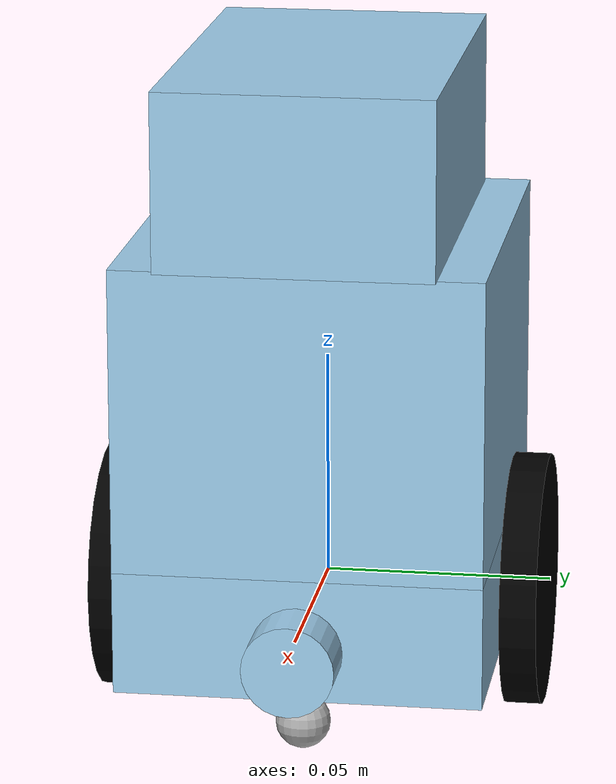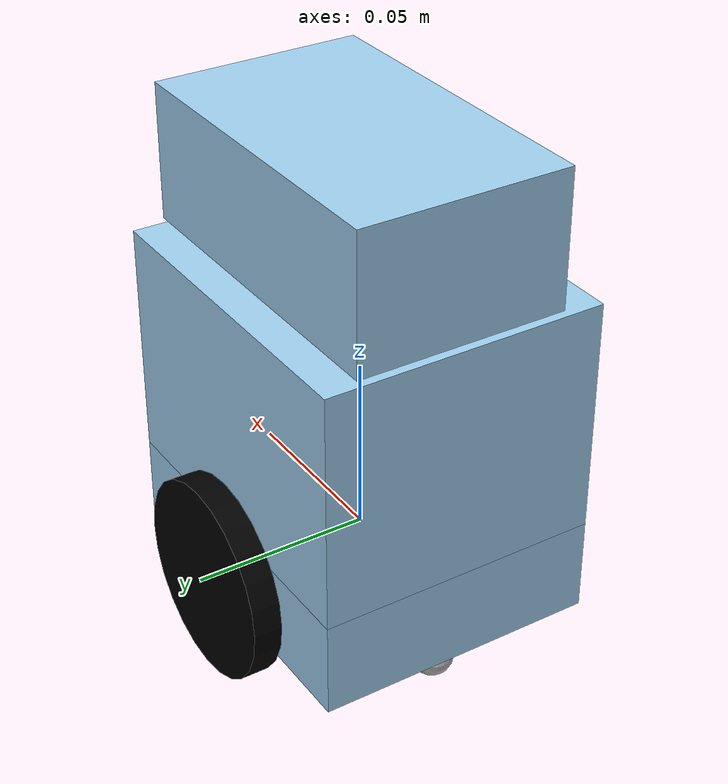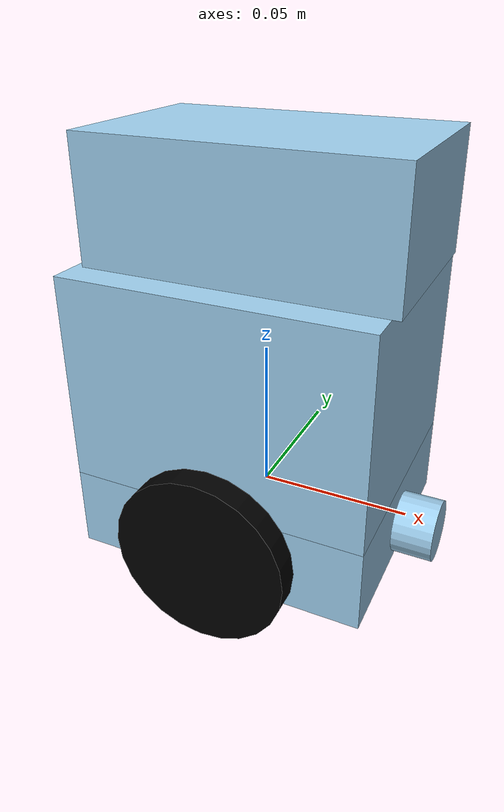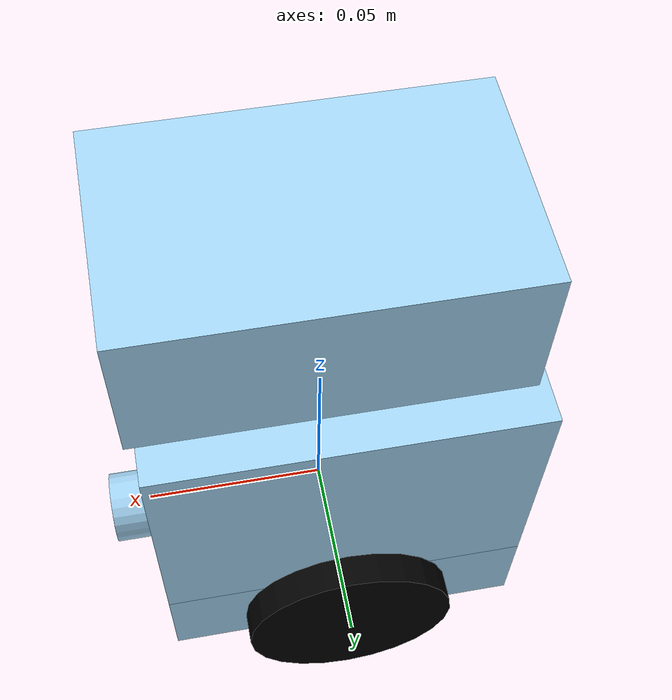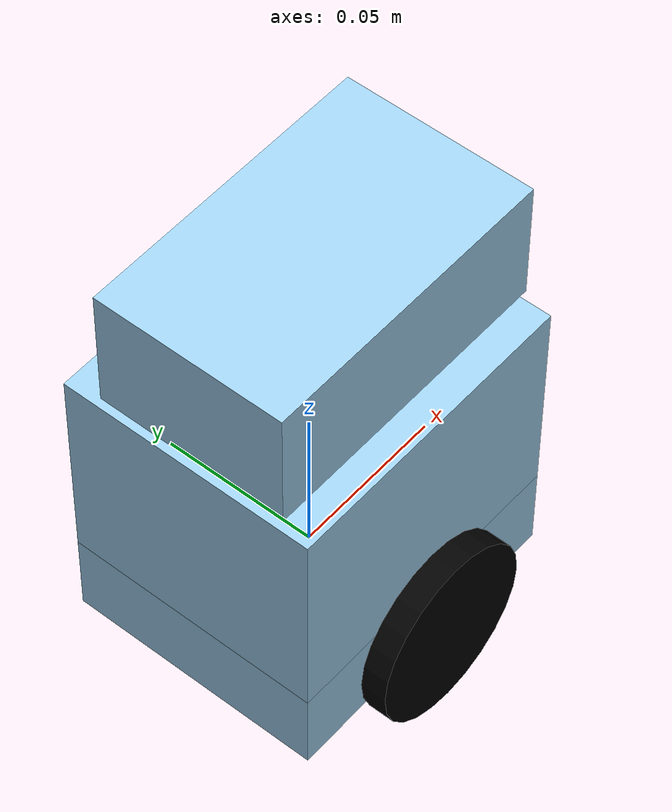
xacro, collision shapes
<?xml version="1.0"?>
<robot xmlns:xacro="http://www.ros.org/wiki/xacro">

    <!-- ================= MATERIAIS ================= -->
    <material name="white"><color rgba="1 1 1 1"/></material>
    <material name="orange"><color rgba="1 0.3 0.1 1"/></material>
    <material name="blue"><color rgba="0.2 0.2 1 1"/></material>
    <material name="black"><color rgba="0 0 0 1"/></material>
    <material name="grey"><color rgba="0.7 0.7 0.7 1"/></material>
    <material name="light_blue"><color rgba="0.62 0.81 0.93 1"/></material>

    <!-- ================= PARAMETROS GEOMETRICOS (medidos no CAD) ================= -->
    <xacro:property name="meshes" value="package://my_bot/description/meshes"/>

    <xacro:property name="wheel_radius" value="0.028"/>            <!-- roda.stl: diametro 56 mm -->
    <xacro:property name="wheel_width" value="0.008"/>             <!-- roda.stl: 8 mm -->
    <xacro:property name="wheel_y" value="0.0454"/>                <!-- centro de cada roda (CAD: separacao centro-a-centro 90.8 mm) -->
    <xacro:property name="wheel_separation" value="${2*wheel_y}"/> <!-- 0.0908 m, usado pelo diff_drive -->
    <xacro:property name="axle_height_in_plate" value="0.007"/>    <!-- eixo das rodas 7 mm acima da origem da placa -->

    <xacro:property name="caster_ball_radius" value="0.006"/>      <!-- bola de 12 mm -->
    <!-- esferas: centro a z=-15 mm na placa => fundo a -21 mm == fundo das rodas (7-28 = -21 mm). Os 3 apoios ficam coplanares. -->
    <xacro:property name="caster_z" value="-0.015"/>
    <xacro:property name="caster_front_y" value="-0.03813"/>
    <xacro:property name="caster_rear_y" value="0.03615"/>

    <xacro:property name="wheel_mass" value="0.012"/>              <!-- roda impressa 7.6 g (PLA macico) + pneu -->
    <xacro:property name="caster_ball_mass" value="0.0071"/>       <!-- esfera de aco 12 mm: 0.902 cm3 x 7.85 g/cm3 -->

    <xacro:property name="chassis_mass" value="0.430"/>            <!-- placa 60 g + corpo/bateria/PCBs 200 g + 2 motores + iman + LIDAR D200 101 g + 2 corpos de caster -->
    <xacro:property name="chassis_com" value="-0.00002 -0.00379 0.05223"/>
    <xacro:property name="chassis_ixx" value="1.0112e-03"/>
    <xacro:property name="chassis_ixy" value="6.9060e-09"/>
    <xacro:property name="chassis_ixz" value="5.4628e-07"/>
    <xacro:property name="chassis_iyy" value="8.4072e-04"/>
    <xacro:property name="chassis_iyz" value="-5.3512e-05"/>
    <xacro:property name="chassis_izz" value="5.6412e-04"/>

    <xacro:property name="motor_max_torque" value="0.078"/>        <!-- N.m por roda (pico) -->
    <xacro:property name="motor_max_speed" value="18.85"/>         <!-- rad/s por roda (180 rpm) -->

    <xacro:property name="resto_z" value="0.02"/>
    <xacro:property name="resto_height" value="0.067"/>
    <xacro:property name="resto_top" value="${resto_z + resto_height}"/>   <!-- 0.087 m no plate frame -->

    <xacro:property name="lidar_len" value="0.0963"/>               <!-- eixo Y do plate frame (frente-tras do robo) -->
    <xacro:property name="lidar_wid" value="0.0598"/>               <!-- eixo X do plate frame (largura) -->
    <xacro:property name="lidar_h" value="0.0388"/>
    <xacro:property name="lidar_plane_h" value="0.027"/>            <!-- plano de varrimento acima da base do sensor (ESTIMATIVA) -->
    <xacro:property name="lidar_x" value="-0.0124"/>                <!-- em base_link -->
    <xacro:property name="lidar_y" value="0.0"/>
    <xacro:property name="lidar_z" value="${resto_top + lidar_plane_h - axle_height_in_plate}"/>   <!-- em base_link: 0.107 m -->
    <!-- altura do plano acima do chao = lidar_z + wheel_radius = 0.135 m (paredes 0.130, pilares 0.210) -->

    <!-- ================= MACROS ================= -->
    <xacro:macro name="chassis_visual" params="mesh xyz rpy material:=light_blue">
        <visual>
            <origin xyz="${xyz}" rpy="${rpy}"/>
            <geometry><mesh filename="${meshes}/${mesh}"/></geometry>
            <material name="${material}"/>
        </visual>
    </xacro:macro>

    <!-- Roda: origem no centro do pneu, eixo de rotacao = Z do link = +Y do base_link.
         Velocidade positiva nas duas juntas => robo anda para a frente (+X). -->
    <xacro:macro name="wheel" params="name y vis_z vis_roll">
        <link name="${name}_wheel">
            <visual>
                <origin xyz="0 0 ${vis_z}" rpy="${vis_roll} 0 0"/>
                <geometry><mesh filename="${meshes}/roda.stl"/></geometry>
                <material name="black"/>
            </visual>
            <collision>
                <geometry><cylinder radius="${wheel_radius}" length="${wheel_width}"/></geometry>
            </collision>
            <inertial>
                <mass value="${wheel_mass}"/>
                <inertia ixx="${wheel_mass/12*(3*wheel_radius*wheel_radius+wheel_width*wheel_width)}" ixy="0" ixz="0"
                         iyy="${wheel_mass/12*(3*wheel_radius*wheel_radius+wheel_width*wheel_width)}" iyz="0"
                         izz="${wheel_mass*wheel_radius*wheel_radius/2}"/>
            </inertial>
        </link>
        <joint name="${name}_wheel_joint" type="continuous">
            <parent link="base_link"/>
            <child link="${name}_wheel"/>
            <origin xyz="0 ${y} 0" rpy="${-pi/2} 0 0"/>
            <axis xyz="0 0 1"/>
            <limit effort="${motor_max_torque}" velocity="${motor_max_speed}"/>
            <dynamics damping="0.0005" friction="0.0"/>
        </joint>
    </xacro:macro>

    <!-- Esfera de apoio (ball transfer): corpo livre de atrito, rola em qualquer direcao -->
    <xacro:macro name="caster_ball" params="name y">
        <link name="${name}">
            <visual>
                <geometry><mesh filename="${meshes}/12mmball__revolve1.stl"/></geometry>
                <material name="grey"/>
            </visual>
            <collision>
                <geometry><sphere radius="${caster_ball_radius}"/></geometry>
            </collision>
            <inertial>
                <mass value="${caster_ball_mass}"/>
                <inertia ixx="${0.4*caster_ball_mass*caster_ball_radius*caster_ball_radius}" ixy="0" ixz="0"
                         iyy="${0.4*caster_ball_mass*caster_ball_radius*caster_ball_radius}" iyz="0"
                         izz="${0.4*caster_ball_mass*caster_ball_radius*caster_ball_radius}"/>
            </inertial>
        </link>
        <joint name="${name}_joint" type="fixed">
            <parent link="chassis"/>
            <child link="${name}"/>
            <origin xyz="0 ${y} ${caster_z}" rpy="0 0 0"/>
        </joint>
    </xacro:macro>

    <!-- ================= LINKS ================= -->
    <link name="base_link"/>

    <!-- chassis: tudo o que e rigido no CAD. Poses no plate frame (mm convertidos para m). -->
    <link name="chassis">
        <xacro:chassis_visual mesh="base.stl"  xyz="0 0 0" rpy="0 0 0"/>
        <xacro:chassis_visual mesh="resto.stl" xyz="0 0 0.02" rpy="0 0 0"/>
        <xacro:chassis_visual mesh="n20_mini_micro_metall_gear_motor.stl" xyz="0.0304 0 0.007" rpy="0 0 0" material="grey"/>
        <xacro:chassis_visual mesh="n20_mini_micro_metall_gear_motor.stl" xyz="-0.0304 0 0.007" rpy="0 0 ${-pi}" material="grey"/>
        <xacro:chassis_visual mesh="eletroiman.stl" xyz="0 -0.04615 0.004" rpy="${pi/2} 0 0" material="orange"/>
        <xacro:chassis_visual mesh="rp_lidar.stl" xyz="0.13277 -0.07837 -0.632692" rpy="${pi/2} 0 ${-pi/2}" material="grey"/>
        <xacro:chassis_visual mesh="casterballwheelbody__cut_extrude6.stl" xyz="0 ${caster_front_y} -0.0175" rpy="0 0 0" material="white"/>
        <xacro:chassis_visual mesh="casterballwheellid__cut_extrude2.stl"  xyz="0 ${caster_front_y} -0.0068" rpy="0 0 -1.83259" material="white"/>
        <xacro:chassis_visual mesh="casterballwheelbody__cut_extrude6.stl" xyz="0 ${caster_rear_y} -0.0174" rpy="0 0 0" material="white"/>
        <xacro:chassis_visual mesh="casterballwheellid__cut_extrude2.stl"  xyz="0 ${caster_rear_y} -0.0067" rpy="0 0 -1.83259" material="white"/>

        <!-- COLISOES simplificadas (primitivas): placa + corpo + caixa do LIDAR D200 + iman.
             Antes so existia a placa, por isso o robo atravessava paredes a altura do corpo/LIDAR. -->
        <collision name="plate_col">
            <origin xyz="0 0 0.0065" rpy="0 0 0"/>
            <geometry><box size="0.080 0.0963 0.027"/></geometry>
        </collision>
        <collision name="body_col">
            <origin xyz="0 0 ${(0.02 + resto_top)/2}" rpy="0 0 0"/>
            <geometry><box size="0.080 0.0963 ${resto_top - 0.02}"/></geometry>
        </collision>
        <!-- LD14P/D200 como caixa unica 59.8 x 96.3 x 38.8 mm, assente no topo do resto -->
        <collision name="lidar_col">
            <origin xyz="-0.0001 -0.0025 ${resto_top + lidar_h/2}" rpy="0 0 0"/>
            <geometry><box size="${lidar_wid} ${lidar_len} ${lidar_h}"/></geometry>
        </collision>
        <collision name="magnet_col">
            <origin xyz="0 -0.05365 0.004" rpy="${pi/2} 0 0"/>
            <geometry><cylinder radius="0.01" length="0.015"/></geometry>
        </collision>

        <!-- massa/CM/inercia calculados a partir das meshes: ver tools/mass_budget.py -->
        <inertial>
            <origin xyz="${chassis_com}" rpy="0 0 0"/>
            <mass value="${chassis_mass}"/>
            <inertia ixx="${chassis_ixx}" ixy="${chassis_ixy}" ixz="${chassis_ixz}"
                     iyy="${chassis_iyy}" iyz="${chassis_iyz}" izz="${chassis_izz}"/>
        </inertial>
    </link>

    <!-- plate frame: 7 mm abaixo do eixo, rodado 90 graus (frente do CAD = -Y  ->  +X do ROS) -->
    <joint name="chassis_joint" type="fixed">
        <parent link="base_link"/>
        <child link="chassis"/>
        <origin xyz="0 0 ${-axle_height_in_plate}" rpy="0 0 ${pi/2}"/>
    </joint>

    <xacro:wheel name="left"  y="${wheel_y}"  vis_z="${-wheel_width/2}" vis_roll="0"/>
    <xacro:wheel name="right" y="${-wheel_y}" vis_z="${wheel_width/2}"  vis_roll="${pi}"/>

    <!-- ================= ESFERAS (casters) ================= -->
    <xacro:caster_ball name="caster_front" y="${caster_front_y}"/>
    <xacro:caster_ball name="caster_rear"  y="${caster_rear_y}"/>

    <link name="imu_link"/>
    <joint name="imu_joint" type="fixed">
        <parent link="base_link"/>
        <child link="imu_link"/>
        <origin xyz="0 0 0.03" rpy="0 0 0"/>
    </joint>

    <!-- ================= LIDAR ================= -->
    <!-- laser_frame ligado ao base_link (NAO ao chassis): o eixo X do laser tem de apontar
         para a frente do robo, senao o angulo 0 do scan fica virado 90 graus para o lado. -->
    <link name="laser_frame"/>
    <joint name="laser_joint" type="fixed">
        <parent link="base_link"/>
        <child link="laser_frame"/>
        <origin xyz="${lidar_x} ${lidar_y} ${lidar_z}" rpy="0 0 0"/>
    </joint>

</robot>
